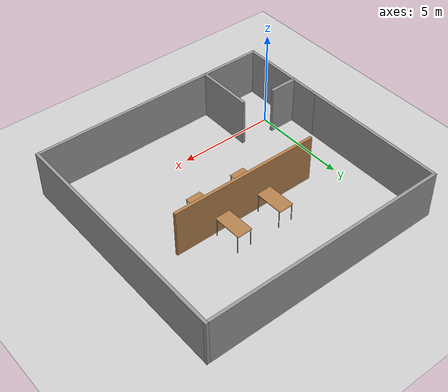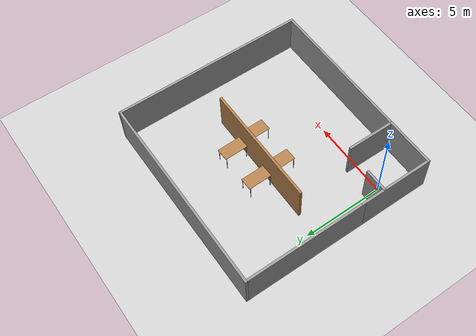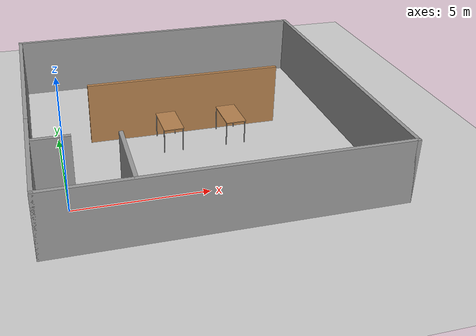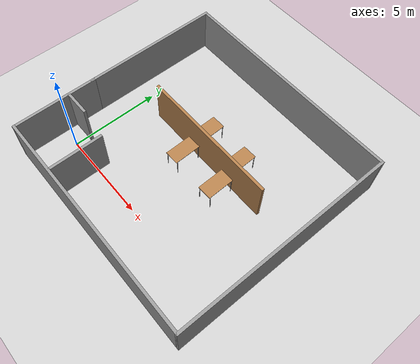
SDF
<sdf version="1.6">
 <world name="default">
  <light name="sun" type="directional">
   <pose>0 0 10 0 -0 0</pose>
   <diffuse>0.8 0.8 0.8 1</diffuse>
   <specular>0.2 0.2 0.2 1</specular>
   <attenuation>
    <range>1000</range>
    <constant>0.9</constant>
    <linear>0.01</linear>
    <quadratic>0.001</quadratic>
   </attenuation>
   <direction>-0.5 0.1 -0.9</direction>
  </light>
  <model name="ground_plane">
   <static>1</static>
   <link name="link">
    <collision name="collision">
     <geometry><plane><normal>0 0 1</normal><size>100 100</size></plane></geometry>
     <surface>
      <contact><collide_bitmask>65535</collide_bitmask></contact>
      <friction><ode><mu>100</mu><mu2>50</mu2></ode></friction>
     </surface>
    </collision>
    <visual name="visual">
     <cast_shadows>0</cast_shadows>
     <geometry><plane><normal>0 0 1</normal><size>100 100</size></plane></geometry>
     <material>
      <script><uri>file://media/materials/scripts/gazebo.material</uri><name>Gazebo/Grey</name></script>
     </material>
    </visual>
   </link>
  </model>
  <gravity>0 0 -9.8</gravity>
  <magnetic_field>6e-06 2.3e-05 -4.2e-05</magnetic_field>
  <atmosphere type="adiabatic"/>
  <physics name="default_physics" default="0" type="ode">
   <max_step_size>0.001</max_step_size>
   <real_time_factor>1</real_time_factor>
   <real_time_update_rate>1000</real_time_update_rate>
  </physics>
  <scene><ambient>0.4 0.4 0.4 1</ambient><background>0.7 0.7 0.7 1</background><shadows>1</shadows></scene>
  <audio><device>default</device></audio>
  <spherical_coordinates>
   <surface_model>EARTH_WGS84</surface_model>
   <latitude_deg>0</latitude_deg>
   <longitude_deg>0</longitude_deg>
   <elevation>0</elevation>
   <heading_deg>0</heading_deg>
  </spherical_coordinates>
  <model name="Untitled">
   <pose>5.1822 3.75215 0 0 -0 0</pose>
   <link name="Wall_10">
    <collision name="Wall_10_Collision">
     <geometry><box><size>7.75 0.15 2.5</size></box></geometry>
     <pose>0 0 1.25 0 -0 0</pose>
    </collision>
    <visual name="Wall_10_Visual">
     <pose>0 0 1.25 0 -0 0</pose>
     <geometry><box><size>7.75 0.15 2.5</size></box></geometry>
     <material>
      <script><uri>file://media/materials/scripts/gazebo.material</uri><name>Gazebo/Grey</name></script>
      <ambient>1 1 1 1</ambient>
     </material>
     <meta><layer>0</layer></meta>
    </visual>
    <pose>-6.3 2.25 0 0 -0 -1.5708</pose>
   </link>
   <link name="Wall_13">
    <collision name="Wall_13_Collision">
     <geometry><box><size>1.5 0.15 2.5</size></box></geometry>
     <pose>0 0 1.25 0 -0 0</pose>
    </collision>
    <visual name="Wall_13_Visual">
     <pose>0 0 1.25 0 -0 0</pose>
     <geometry><box><size>1.5 0.15 2.5</size></box></geometry>
     <material>
      <script><uri>file://media/materials/scripts/gazebo.material</uri><name>Gazebo/Grey</name></script>
      <ambient>1 1 1 1</ambient>
     </material>
     <meta><layer>0</layer></meta>
    </visual>
    <pose>-5.60996 -2.93204 0 0 -0 0</pose>
   </link>
   <link name="Wall_15">
    <collision name="Wall_15_Collision">
     <geometry><box><size>3 0.15 2.5</size></box></geometry>
     <pose>0 0 1.25 0 -0 0</pose>
    </collision>
    <visual name="Wall_15_Visual">
     <pose>0 0 1.25 0 -0 0</pose>
     <geometry><box><size>3 0.15 2.5</size></box></geometry>
     <material>
      <script><uri>file://media/materials/scripts/gazebo.material</uri><name>Gazebo/Grey</name></script>
      <ambient>1 1 1 1</ambient>
     </material>
     <meta><layer>0</layer></meta>
    </visual>
    <pose>-3.18746 -4.56431 0 0 -0 1.5708</pose>
   </link>
   <link name="Wall_6">
    <collision name="Wall_6_Collision">
     <geometry><box><size>4.75 0.15 2.5</size></box></geometry>
     <pose>0 0 1.25 0 -0 0</pose>
    </collision>
    <visual name="Wall_6_Visual">
     <pose>0 0 1.25 0 -0 0</pose>
     <geometry><box><size>4.75 0.15 2.5</size></box></geometry>
     <material>
      <script><uri>file://media/materials/scripts/gazebo.material</uri><name>Gazebo/Grey</name></script>
      <ambient>1 1 1 1</ambient>
     </material>
     <meta><layer>0</layer></meta>
    </visual>
    <pose>-6.3 -3.75 0 0 -0 -1.5708</pose>
   </link>
   <link name="Wall_7">
    <collision name="Wall_7_Collision">
     <geometry><box><size>12.75 0.15 2.5</size></box></geometry>
     <pose>0 0 1.25 0 -0 0</pose>
    </collision>
    <visual name="Wall_7_Visual">
     <pose>0 0 1.25 0 -0 0</pose>
     <geometry><box><size>12.75 0.15 2.5</size></box></geometry>
     <material>
      <script><uri>file://media/materials/scripts/gazebo.material</uri><name>Gazebo/Grey</name></script>
      <ambient>1 1 1 1</ambient>
     </material>
     <meta><layer>0</layer></meta>
    </visual>
    <pose>0 -6.05 0 0 -0 0</pose>
   </link>
   <link name="Wall_8">
    <collision name="Wall_8_Collision">
     <geometry><box><size>12.25 0.15 2.5</size></box></geometry>
     <pose>0 0 1.25 0 -0 0</pose>
    </collision>
    <visual name="Wall_8_Visual">
     <pose>0 0 1.25 0 -0 0</pose>
     <geometry><box><size>12.25 0.15 2.5</size></box></geometry>
     <material>
      <script><uri>file://media/materials/scripts/gazebo.material</uri><name>Gazebo/Grey</name></script>
      <ambient>1 1 1 1</ambient>
     </material>
     <meta><layer>0</layer></meta>
    </visual>
    <pose>6.3 -0 0 0 -0 1.5708</pose>
   </link>
   <link name="Wall_9">
    <collision name="Wall_9_Collision">
     <geometry><box><size>12.75 0.15 2.5</size></box></geometry>
     <pose>0 0 1.25 0 -0 0</pose>
    </collision>
    <visual name="Wall_9_Visual">
     <pose>0 0 1.25 0 -0 0</pose>
     <geometry><box><size>12.75 0.15 2.5</size></box></geometry>
     <material>
      <script><uri>file://media/materials/scripts/gazebo.material</uri><name>Gazebo/Grey</name></script>
      <ambient>1 1 1 1</ambient>
     </material>
     <meta><layer>0</layer></meta>
    </visual>
    <pose>0 6.05 0 0 -0 3.14159</pose>
   </link>
   <static>1</static>
  </model>
  <model name="table">
   <static>1</static>
   <link name="link">
    <collision name="surface">
     <pose>0 0 1 0 -0 0</pose>
     <geometry><box><size>1.5 0.8 0.03</size></box></geometry>
     <surface><friction><ode><mu>0.6</mu><mu2>0.6</mu2></ode></friction></surface>
    </collision>
    <visual name="visual1">
     <pose>0 0 1 0 -0 0</pose>
     <geometry><box><size>1.5 0.8 0.03</size></box></geometry>
     <material>
      <script><uri>file://media/materials/scripts/gazebo.material</uri><name>Gazebo/Wood</name></script>
     </material>
    </visual>
    <collision name="front_left_leg">
     <pose>0.68 0.38 0.5 0 -0 0</pose>
     <geometry><cylinder><radius>0.02</radius><length>1</length></cylinder></geometry>
    </collision>
    <visual name="front_left_leg">
     <pose>0.68 0.38 0.5 0 -0 0</pose>
     <geometry><cylinder><radius>0.02</radius><length>1</length></cylinder></geometry>
     <material>
      <script><uri>file://media/materials/scripts/gazebo.material</uri><name>Gazebo/Grey</name></script>
     </material>
    </visual>
    <collision name="front_right_leg">
     <pose>0.68 -0.38 0.5 0 -0 0</pose>
     <geometry><cylinder><radius>0.02</radius><length>1</length></cylinder></geometry>
    </collision>
    <visual name="front_right_leg">
     <pose>0.68 -0.38 0.5 0 -0 0</pose>
     <geometry><cylinder><radius>0.02</radius><length>1</length></cylinder></geometry>
     <material>
      <script><uri>file://media/materials/scripts/gazebo.material</uri><name>Gazebo/Grey</name></script>
     </material>
    </visual>
    <collision name="back_right_leg">
     <pose>-0.68 -0.38 0.5 0 -0 0</pose>
     <geometry><cylinder><radius>0.02</radius><length>1</length></cylinder></geometry>
    </collision>
    <visual name="back_right_leg">
     <pose>-0.68 -0.38 0.5 0 -0 0</pose>
     <geometry><cylinder><radius>0.02</radius><length>1</length></cylinder></geometry>
     <material>
      <script><uri>file://media/materials/scripts/gazebo.material</uri><name>Gazebo/Grey</name></script>
     </material>
    </visual>
    <collision name="back_left_leg">
     <pose>-0.68 0.38 0.5 0 -0 0</pose>
     <geometry><cylinder><radius>0.02</radius><length>1</length></cylinder></geometry>
    </collision>
    <visual name="back_left_leg">
     <pose>-0.68 0.38 0.5 0 -0 0</pose>
     <geometry><cylinder><radius>0.02</radius><length>1</length></cylinder></geometry>
     <material>
      <script><uri>file://media/materials/scripts/gazebo.material</uri><name>Gazebo/Grey</name></script>
     </material>
    </visual>
   </link>
   <pose>6.58455 5.4722 0 0 -0 1.59282</pose>
  </model>
  <model name="table_clone">
   <static>1</static>
   <link name="link">
    <collision name="surface">
     <pose>0 0 1 0 -0 0</pose>
     <geometry><box><size>1.5 0.8 0.03</size></box></geometry>
     <surface><friction><ode><mu>0.6</mu><mu2>0.6</mu2></ode></friction></surface>
    </collision>
    <visual name="visual1">
     <pose>0 0 1 0 -0 0</pose>
     <geometry><box><size>1.5 0.8 0.03</size></box></geometry>
     <material>
      <script><uri>file://media/materials/scripts/gazebo.material</uri><name>Gazebo/Wood</name></script>
     </material>
    </visual>
    <collision name="front_left_leg">
     <pose>0.68 0.38 0.5 0 -0 0</pose>
     <geometry><cylinder><radius>0.02</radius><length>1</length></cylinder></geometry>
    </collision>
    <visual name="front_left_leg">
     <pose>0.68 0.38 0.5 0 -0 0</pose>
     <geometry><cylinder><radius>0.02</radius><length>1</length></cylinder></geometry>
     <material>
      <script><uri>file://media/materials/scripts/gazebo.material</uri><name>Gazebo/Grey</name></script>
     </material>
    </visual>
    <collision name="front_right_leg">
     <pose>0.68 -0.38 0.5 0 -0 0</pose>
     <geometry><cylinder><radius>0.02</radius><length>1</length></cylinder></geometry>
    </collision>
    <visual name="front_right_leg">
     <pose>0.68 -0.38 0.5 0 -0 0</pose>
     <geometry><cylinder><radius>0.02</radius><length>1</length></cylinder></geometry>
     <material>
      <script><uri>file://media/materials/scripts/gazebo.material</uri><name>Gazebo/Grey</name></script>
     </material>
    </visual>
    <collision name="back_right_leg">
     <pose>-0.68 -0.38 0.5 0 -0 0</pose>
     <geometry><cylinder><radius>0.02</radius><length>1</length></cylinder></geometry>
    </collision>
    <visual name="back_right_leg">
     <pose>-0.68 -0.38 0.5 0 -0 0</pose>
     <geometry><cylinder><radius>0.02</radius><length>1</length></cylinder></geometry>
     <material>
      <script><uri>file://media/materials/scripts/gazebo.material</uri><name>Gazebo/Grey</name></script>
     </material>
    </visual>
    <collision name="back_left_leg">
     <pose>-0.68 0.38 0.5 0 -0 0</pose>
     <geometry><cylinder><radius>0.02</radius><length>1</length></cylinder></geometry>
    </collision>
    <visual name="back_left_leg">
     <pose>-0.68 0.38 0.5 0 -0 0</pose>
     <geometry><cylinder><radius>0.02</radius><length>1</length></cylinder></geometry>
     <material>
      <script><uri>file://media/materials/scripts/gazebo.material</uri><name>Gazebo/Grey</name></script>
     </material>
    </visual>
   </link>
   <pose>6.86417 3.70689 0 0 -0 1.59282</pose>
  </model>
  <model name="table_clone_0">
   <static>1</static>
   <link name="link">
    <collision name="surface">
     <pose>0 0 1 0 -0 0</pose>
     <geometry><box><size>1.5 0.8 0.03</size></box></geometry>
     <surface><friction><ode><mu>0.6</mu><mu2>0.6</mu2></ode></friction></surface>
    </collision>
    <visual name="visual1">
     <pose>0 0 1 0 -0 0</pose>
     <geometry><box><size>1.5 0.8 0.03</size></box></geometry>
     <material>
      <script><uri>file://media/materials/scripts/gazebo.material</uri><name>Gazebo/Wood</name></script>
     </material>
    </visual>
    <collision name="front_left_leg">
     <pose>0.68 0.38 0.5 0 -0 0</pose>
     <geometry><cylinder><radius>0.02</radius><length>1</length></cylinder></geometry>
    </collision>
    <visual name="front_left_leg">
     <pose>0.68 0.38 0.5 0 -0 0</pose>
     <geometry><cylinder><radius>0.02</radius><length>1</length></cylinder></geometry>
     <material>
      <script><uri>file://media/materials/scripts/gazebo.material</uri><name>Gazebo/Grey</name></script>
     </material>
    </visual>
    <collision name="front_right_leg">
     <pose>0.68 -0.38 0.5 0 -0 0</pose>
     <geometry><cylinder><radius>0.02</radius><length>1</length></cylinder></geometry>
    </collision>
    <visual name="front_right_leg">
     <pose>0.68 -0.38 0.5 0 -0 0</pose>
     <geometry><cylinder><radius>0.02</radius><length>1</length></cylinder></geometry>
     <material>
      <script><uri>file://media/materials/scripts/gazebo.material</uri><name>Gazebo/Grey</name></script>
     </material>
    </visual>
    <collision name="back_right_leg">
     <pose>-0.68 -0.38 0.5 0 -0 0</pose>
     <geometry><cylinder><radius>0.02</radius><length>1</length></cylinder></geometry>
    </collision>
    <visual name="back_right_leg">
     <pose>-0.68 -0.38 0.5 0 -0 0</pose>
     <geometry><cylinder><radius>0.02</radius><length>1</length></cylinder></geometry>
     <material>
      <script><uri>file://media/materials/scripts/gazebo.material</uri><name>Gazebo/Grey</name></script>
     </material>
    </visual>
    <collision name="back_left_leg">
     <pose>-0.68 0.38 0.5 0 -0 0</pose>
     <geometry><cylinder><radius>0.02</radius><length>1</length></cylinder></geometry>
    </collision>
    <visual name="back_left_leg">
     <pose>-0.68 0.38 0.5 0 -0 0</pose>
     <geometry><cylinder><radius>0.02</radius><length>1</length></cylinder></geometry>
     <material>
      <script><uri>file://media/materials/scripts/gazebo.material</uri><name>Gazebo/Grey</name></script>
     </material>
    </visual>
   </link>
   <pose>4.20108 5.47257 0 0 -0 1.59282</pose>
  </model>
  <model name="table_clone_1">
   <static>1</static>
   <link name="link">
    <collision name="surface">
     <pose>0 0 1 0 -0 0</pose>
     <geometry><box><size>1.5 0.8 0.03</size></box></geometry>
     <surface><friction><ode><mu>0.6</mu><mu2>0.6</mu2></ode></friction></surface>
    </collision>
    <visual name="visual1">
     <pose>0 0 1 0 -0 0</pose>
     <geometry><box><size>1.5 0.8 0.03</size></box></geometry>
     <material>
      <script><uri>file://media/materials/scripts/gazebo.material</uri><name>Gazebo/Wood</name></script>
     </material>
    </visual>
    <collision name="front_left_leg">
     <pose>0.68 0.38 0.5 0 -0 0</pose>
     <geometry><cylinder><radius>0.02</radius><length>1</length></cylinder></geometry>
    </collision>
    <visual name="front_left_leg">
     <pose>0.68 0.38 0.5 0 -0 0</pose>
     <geometry><cylinder><radius>0.02</radius><length>1</length></cylinder></geometry>
     <material>
      <script><uri>file://media/materials/scripts/gazebo.material</uri><name>Gazebo/Grey</name></script>
     </material>
    </visual>
    <collision name="front_right_leg">
     <pose>0.68 -0.38 0.5 0 -0 0</pose>
     <geometry><cylinder><radius>0.02</radius><length>1</length></cylinder></geometry>
    </collision>
    <visual name="front_right_leg">
     <pose>0.68 -0.38 0.5 0 -0 0</pose>
     <geometry><cylinder><radius>0.02</radius><length>1</length></cylinder></geometry>
     <material>
      <script><uri>file://media/materials/scripts/gazebo.material</uri><name>Gazebo/Grey</name></script>
     </material>
    </visual>
    <collision name="back_right_leg">
     <pose>-0.68 -0.38 0.5 0 -0 0</pose>
     <geometry><cylinder><radius>0.02</radius><length>1</length></cylinder></geometry>
    </collision>
    <visual name="back_right_leg">
     <pose>-0.68 -0.38 0.5 0 -0 0</pose>
     <geometry><cylinder><radius>0.02</radius><length>1</length></cylinder></geometry>
     <material>
      <script><uri>file://media/materials/scripts/gazebo.material</uri><name>Gazebo/Grey</name></script>
     </material>
    </visual>
    <collision name="back_left_leg">
     <pose>-0.68 0.38 0.5 0 -0 0</pose>
     <geometry><cylinder><radius>0.02</radius><length>1</length></cylinder></geometry>
    </collision>
    <visual name="back_left_leg">
     <pose>-0.68 0.38 0.5 0 -0 0</pose>
     <geometry><cylinder><radius>0.02</radius><length>1</length></cylinder></geometry>
     <material>
      <script><uri>file://media/materials/scripts/gazebo.material</uri><name>Gazebo/Grey</name></script>
     </material>
    </visual>
   </link>
   <pose>4.34159 3.71747 0 0 -0 1.59282</pose>
  </model>
  <model name="Untitled_3">
   <pose>5.16235 4.57602 0 0 -0 0</pose>
   <link name="Wall_16">
    <collision name="Wall_16_Collision">
     <geometry><box><size>7.75 0.15 2.5</size></box></geometry>
     <pose>0 0 1.25 0 -0 0</pose>
    </collision>
    <visual name="Wall_16_Visual">
     <pose>0 0 1.25 0 -0 0</pose>
     <geometry><box><size>7.75 0.15 2.5</size></box></geometry>
     <material>
      <script><uri>file://media/materials/scripts/gazebo.material</uri><name>Gazebo/Wood</name></script>
      <ambient>1 1 1 1</ambient>
     </material>
     <meta><layer>0</layer></meta>
    </visual>
   </link>
   <static>1</static>
  </model>
 </world>
</sdf>
